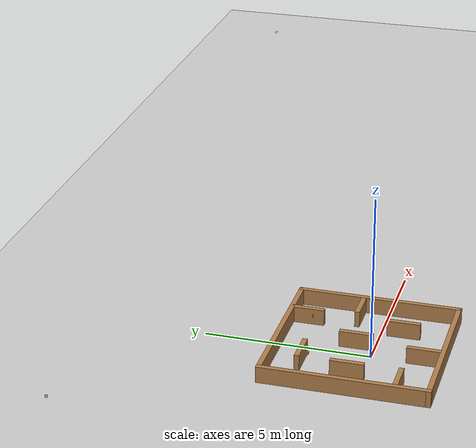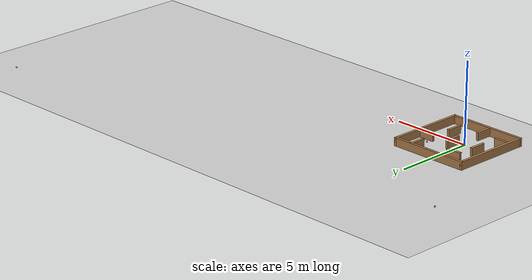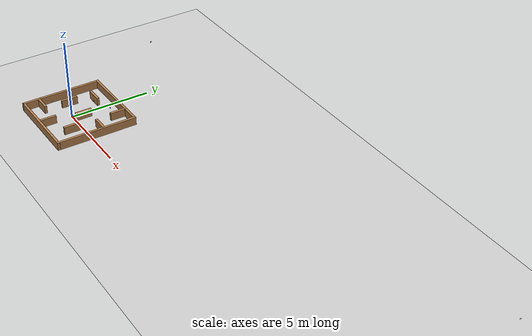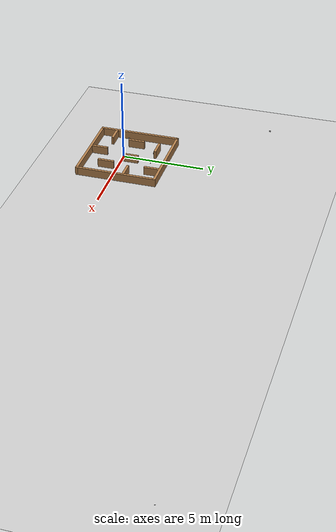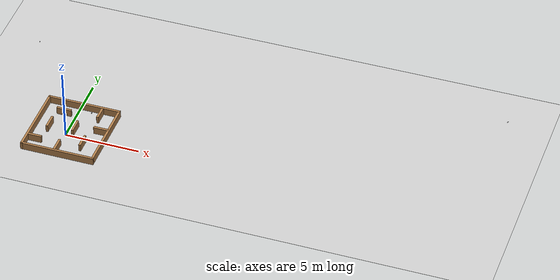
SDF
<sdf version="1.7">
 <world name="default">
  <light name="sun" type="directional">
   <pose>0 0 10 0 -0 0</pose>
   <diffuse>0.8 0.8 0.8 1</diffuse>
   <specular>0.2 0.2 0.2 1</specular>
   <attenuation>
    <range>1000</range>
    <constant>0.9</constant>
    <linear>0.01</linear>
    <quadratic>0.001</quadratic>
   </attenuation>
   <direction>-0.5 0.1 -0.9</direction>
   <spot><inner_angle>0</inner_angle><outer_angle>0</outer_angle><falloff>0</falloff></spot>
  </light>
  <model name="ground_plane">
   <static>1</static>
   <link name="link">
    <collision name="collision">
     <geometry><plane><normal>0 0 1</normal><size>100 100</size></plane></geometry>
     <surface><friction><ode><mu>100</mu><mu2>50</mu2></ode></friction></surface>
    </collision>
    <visual name="visual">
     <cast_shadows>0</cast_shadows>
     <geometry><plane><normal>0 0 1</normal><size>100 100</size></plane></geometry>
     <material>
      <script><uri>file://media/materials/scripts/gazebo.material</uri><name>Gazebo/Grey</name></script>
     </material>
    </visual>
   </link>
  </model>
  <physics type="ode">
   <real_time_update_rate>1000</real_time_update_rate>
   <max_step_size>0.001</max_step_size>
   <real_time_factor>1</real_time_factor>
   <ode>
    <solver>
     <type>quick</type>
     <iters>150</iters>
     <precon_iters>0</precon_iters>
     <sor>1.4</sor>
     <use_dynamic_moi_rescaling>1</use_dynamic_moi_rescaling>
    </solver>
    <constraints>
     <cfm>1e-05</cfm>
     <erp>0.2</erp>
     <contact_max_correcting_vel>2000</contact_max_correcting_vel>
     <contact_surface_layer>0.01</contact_surface_layer>
    </constraints>
   </ode>
  </physics>
  <scene><ambient>0.4 0.4 0.4 1</ambient><background>0.7 0.7 0.7 1</background><shadows>1</shadows></scene>
  <gravity>0 0 -9.8</gravity>
  <magnetic_field>6e-06 2.3e-05 -4.2e-05</magnetic_field>
  <atmosphere type="adiabatic"/>
  <spherical_coordinates>
   <surface_model>EARTH_WGS84</surface_model>
   <latitude_deg>0</latitude_deg>
   <longitude_deg>0</longitude_deg>
   <elevation>0</elevation>
   <heading_deg>0</heading_deg>
  </spherical_coordinates>
  <model name="marker26_8cm">
   <static>0</static>
   <link name="marker">
    <inertial>
     <mass>0.1</mass>
     <inertia><ixx>0</ixx><ixy>0</ixy><ixz>0</ixz><iyy>0</iyy><iyz>0</iyz><izz>0</izz></inertia>
    </inertial>
    <visual name="visual">
     <geometry><box><size>0.09 0.09 0.001</size></box></geometry>
     <material>
      <script>
       <uri>model://marker26_8cm/material/scripts</uri>
       <uri>model://marker26_8cm/material/textures</uri>
       <name>Aruco/marker26_8cm</name>
      </script>
     </material>
    </visual>
    <collision name="collision"><geometry><box><size>0.09 0.09 0.02</size></box></geometry></collision>
    <self_collide>1</self_collide>
    <kinematic>1</kinematic>
   </link>
   <pose>-0.607519 1.71106 0.199985 1.57087 -0 0</pose>
  </model>
  <model name="marker26_8cm_0">
   <static>0</static>
   <link name="marker">
    <gravity>0</gravity>
    <visual name="visual">
     <geometry><box><size>0.09 0.09 0.001</size></box></geometry>
     <material>
      <script>
       <uri>model://marker26_8cm/material/scripts</uri>
       <uri>model://marker26_8cm/material/textures</uri>
       <name>Aruco/marker26_8cm</name>
      </script>
     </material>
    </visual>
    <collision name="collision"><geometry><box><size>0.09 0.09 0.02</size></box></geometry></collision>
    <inertial>
     <inertia><ixx>1</ixx><ixy>0</ixy><ixz>0</ixz><iyy>1</iyy><iyz>0</iyz><izz>1</izz></inertia>
     <mass>1</mass>
    </inertial>
   </link>
   <pose>26.7612 10.2082 0.128084 0.032538 -0.639695 0.158295</pose>
  </model>
  <model name="marker26_8cm_clone">
   <static>0</static>
   <link name="marker">
    <inertial>
     <mass>0.1</mass>
     <inertia><ixx>0</ixx><ixy>0</ixy><ixz>0</ixz><iyy>0</iyy><iyz>0</iyz><izz>0</izz></inertia>
    </inertial>
    <visual name="visual">
     <geometry><box><size>0.09 0.09 0.001</size></box></geometry>
     <material>
      <script>
       <uri>model://marker26_8cm/material/scripts</uri>
       <uri>model://marker26_8cm/material/textures</uri>
       <name>Aruco/marker26_8cm</name>
      </script>
     </material>
    </visual>
    <collision name="collision"><geometry><box><size>0.09 0.09 0.02</size></box></geometry></collision>
    <self_collide>1</self_collide>
    <kinematic>1</kinematic>
   </link>
   <pose>1.04047 2.01049 0.506362 1.57 -0 4e-06</pose>
  </model>
  <model name="marker26_8cm_clone_0">
   <static>0</static>
   <link name="marker">
    <inertial>
     <mass>0.1</mass>
     <inertia><ixx>0</ixx><ixy>0</ixy><ixz>0</ixz><iyy>0</iyy><iyz>0</iyz><izz>0</izz></inertia>
    </inertial>
    <visual name="visual">
     <geometry><box><size>0.09 0.09 0.001</size></box></geometry>
     <material>
      <script>
       <uri>model://marker26_8cm/material/scripts</uri>
       <uri>model://marker26_8cm/material/textures</uri>
       <name>Aruco/marker26_8cm</name>
      </script>
     </material>
    </visual>
    <collision name="collision"><geometry><box><size>0.09 0.09 0.02</size></box></geometry></collision>
    <self_collide>1</self_collide>
    <kinematic>1</kinematic>
   </link>
   <pose>-5 8 0.3 1.57087 0.000132 1.57</pose>
  </model>
  <model name="marker26_8cm_clone_1">
   <static>0</static>
   <link name="marker">
    <inertial>
     <mass>0.1</mass>
     <inertia><ixx>0</ixx><ixy>0</ixy><ixz>0</ixz><iyy>0</iyy><iyz>0</iyz><izz>0</izz></inertia>
    </inertial>
    <visual name="visual">
     <geometry><box><size>0.09 0.09 0.001</size></box></geometry>
     <material>
      <script>
       <uri>model://marker26_8cm/material/scripts</uri>
       <uri>model://marker26_8cm/material/textures</uri>
       <name>Aruco/marker26_8cm</name>
      </script>
     </material>
    </visual>
    <collision name="collision"><geometry><box><size>0.09 0.09 0.02</size></box></geometry></collision>
    <self_collide>1</self_collide>
    <kinematic>1</kinematic>
   </link>
   <pose>-2.09558 -0.361728 0.043639 1.57093 -7.5e-05 1.58271</pose>
  </model>
  <model name="turtlebot3_plaza">
   <pose>0.240602 0.336085 0 0 -0 0</pose>
   <link name="Wall_0">
    <collision name="Wall_0_Collision">
     <geometry><box><size>5 0.15 0.5</size></box></geometry>
     <pose>0 0 0.25 0 -0 0</pose>
    </collision>
    <visual name="Wall_0_Visual">
     <pose>0 0 0.25 0 -0 0</pose>
     <geometry><box><size>5 0.15 0.5</size></box></geometry>
     <material>
      <script><uri>file://media/materials/scripts/gazebo.material</uri><name>Gazebo/Wood</name></script>
      <ambient>1 1 1 1</ambient>
     </material>
    </visual>
    <pose>-2.425 0 0 0 -0 1.5708</pose>
   </link>
   <link name="Wall_11">
    <collision name="Wall_11_Collision">
     <geometry><box><size>1 0.15 0.5</size></box></geometry>
     <pose>0 0 0.25 0 -0 0</pose>
    </collision>
    <visual name="Wall_11_Visual">
     <pose>0 0 0.25 0 -0 0</pose>
     <geometry><box><size>1 0.15 0.5</size></box></geometry>
     <material>
      <script><uri>file://media/materials/scripts/gazebo.material</uri><name>Gazebo/Wood</name></script>
      <ambient>1 1 1 1</ambient>
     </material>
    </visual>
    <pose>-1.937 -1.467 0 0 -0 0</pose>
   </link>
   <link name="Wall_13">
    <collision name="Wall_13_Collision">
     <geometry><box><size>1 0.15 0.5</size></box></geometry>
     <pose>0 0 0.25 0 -0 0</pose>
    </collision>
    <visual name="Wall_13_Visual">
     <pose>0 0 0.25 0 -0 0</pose>
     <geometry><box><size>1 0.15 0.5</size></box></geometry>
     <material>
      <script><uri>file://media/materials/scripts/gazebo.material</uri><name>Gazebo/Wood</name></script>
      <ambient>1 1 1 1</ambient>
     </material>
    </visual>
    <pose>-0.22 -1.866 0 0 0 -1.5708</pose>
   </link>
   <link name="Wall_15">
    <collision name="Wall_15_Collision">
     <geometry><box><size>1 0.15 0.5</size></box></geometry>
     <pose>0 0 0.25 0 -0 0</pose>
    </collision>
    <visual name="Wall_15_Visual">
     <pose>0 0 0.25 0 -0 0</pose>
     <geometry><box><size>1 0.15 0.5</size></box></geometry>
     <material>
      <script><uri>file://media/materials/scripts/gazebo.material</uri><name>Gazebo/Wood</name></script>
      <ambient>1 1 1 1</ambient>
     </material>
    </visual>
    <pose>1.195 -1.002 0 0 -0 1.5708</pose>
   </link>
   <link name="Wall_17">
    <collision name="Wall_17_Collision">
     <geometry><box><size>1 0.15 0.5</size></box></geometry>
     <pose>0 0 0.25 0 -0 0</pose>
    </collision>
    <visual name="Wall_17_Visual">
     <pose>0 0 0.25 0 -0 0</pose>
     <geometry><box><size>1 0.15 0.5</size></box></geometry>
     <material>
      <script><uri>file://media/materials/scripts/gazebo.material</uri><name>Gazebo/Wood</name></script>
      <ambient>1 1 1 1</ambient>
     </material>
    </visual>
    <pose>1.288 1.93 0 0 0 -1.5708</pose>
   </link>
   <link name="Wall_19">
    <collision name="Wall_19_Collision">
     <geometry><box><size>1 0.15 0.5</size></box></geometry>
     <pose>0 0 0.25 0 -0 0</pose>
    </collision>
    <visual name="Wall_19_Visual">
     <pose>0 0 0.25 0 -0 0</pose>
     <geometry><box><size>1 0.15 0.5</size></box></geometry>
     <material>
      <script><uri>file://media/materials/scripts/gazebo.material</uri><name>Gazebo/Wood</name></script>
      <ambient>1 1 1 1</ambient>
     </material>
    </visual>
    <pose>1.91128 0.4632 0 0 -0 0</pose>
   </link>
   <link name="Wall_2">
    <collision name="Wall_2_Collision">
     <geometry><box><size>5 0.15 0.5</size></box></geometry>
     <pose>0 0 0.25 0 -0 0</pose>
    </collision>
    <visual name="Wall_2_Visual">
     <pose>0 0 0.25 0 -0 0</pose>
     <geometry><box><size>5 0.15 0.5</size></box></geometry>
     <material>
      <script><uri>file://media/materials/scripts/gazebo.material</uri><name>Gazebo/Wood</name></script>
      <ambient>1 1 1 1</ambient>
     </material>
    </visual>
    <pose>0 2.425 0 0 -0 0</pose>
   </link>
   <link name="Wall_21">
    <collision name="Wall_21_Collision">
     <geometry><box><size>1 0.15 0.5</size></box></geometry>
     <pose>0 0 0.25 0 -0 0</pose>
    </collision>
    <visual name="Wall_21_Visual">
     <pose>0 0 0.25 0 -0 0</pose>
     <geometry><box><size>1 0.15 0.5</size></box></geometry>
     <material>
      <script><uri>file://media/materials/scripts/gazebo.material</uri><name>Gazebo/Wood</name></script>
      <ambient>1 1 1 1</ambient>
     </material>
    </visual>
    <pose>0.204 0.215 0 0 0 -1.5708</pose>
   </link>
   <link name="Wall_3">
    <collision name="Wall_3_Collision">
     <geometry><box><size>5 0.15 0.5</size></box></geometry>
     <pose>0 0 0.25 0 -0 0</pose>
    </collision>
    <visual name="Wall_3_Visual">
     <pose>0 0 0.25 0 -0 0</pose>
     <geometry><box><size>5 0.15 0.5</size></box></geometry>
     <material>
      <script><uri>file://media/materials/scripts/gazebo.material</uri><name>Gazebo/Wood</name></script>
      <ambient>1 1 1 1</ambient>
     </material>
    </visual>
    <pose>2.425 0 0 0 0 -1.5708</pose>
   </link>
   <link name="Wall_4">
    <collision name="Wall_4_Collision">
     <geometry><box><size>5 0.15 0.5</size></box></geometry>
     <pose>0 0 0.25 0 -0 0</pose>
    </collision>
    <visual name="Wall_4_Visual">
     <pose>0 0 0.25 0 -0 0</pose>
     <geometry><box><size>5 0.15 0.5</size></box></geometry>
     <material>
      <script><uri>file://media/materials/scripts/gazebo.material</uri><name>Gazebo/Wood</name></script>
      <ambient>1 1 1 1</ambient>
     </material>
    </visual>
    <pose>0 -2.425 0 0 -0 3.14159</pose>
   </link>
   <link name="Wall_7">
    <collision name="Wall_7_Collision">
     <geometry><box><size>1 0.15 0.5</size></box></geometry>
     <pose>0 0 0.25 0 -0 0</pose>
    </collision>
    <visual name="Wall_7_Visual">
     <pose>0 0 0.25 0 -0 0</pose>
     <geometry><box><size>1 0.15 0.5</size></box></geometry>
     <material>
      <script><uri>file://media/materials/scripts/gazebo.material</uri><name>Gazebo/Wood</name></script>
      <ambient>1 1 1 1</ambient>
     </material>
    </visual>
    <pose>-1.064 1.548 0 0 -0 0</pose>
   </link>
   <link name="Wall_9">
    <collision name="Wall_9_Collision">
     <geometry><box><size>1 0.15 0.5</size></box></geometry>
     <pose>0 0 0.25 0 -0 0</pose>
    </collision>
    <visual name="Wall_9_Visual">
     <pose>0 0 0.25 0 -0 0</pose>
     <geometry><box><size>1 0.15 0.5</size></box></geometry>
     <material>
      <script><uri>file://media/materials/scripts/gazebo.material</uri><name>Gazebo/Wood</name></script>
      <ambient>1 1 1 1</ambient>
     </material>
    </visual>
    <pose>-1.502 0.092 0 0 0 -1.5708</pose>
   </link>
   <static>1</static>
  </model>
 </world>
</sdf>
